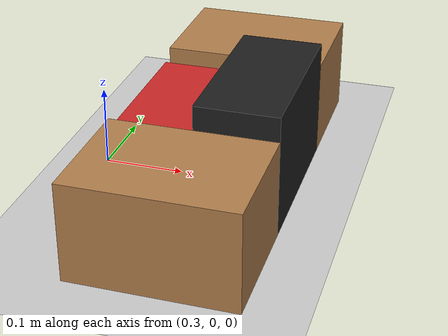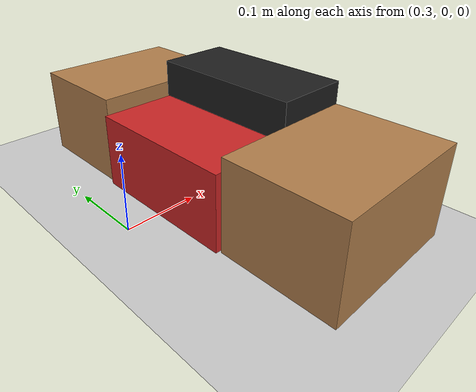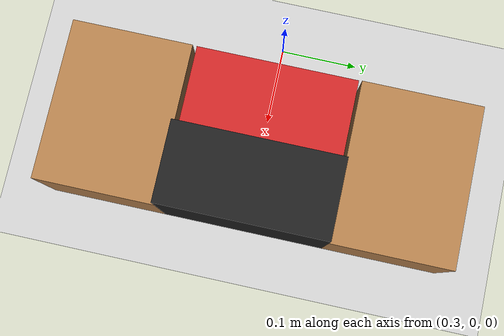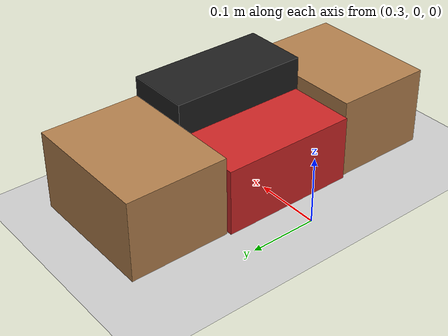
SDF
<sdf version="1.6">
 <world name="lifting">
  <physics type="ode"><real_time_update_rate>1000</real_time_update_rate></physics>
  <include><uri>model://sun</uri></include>
  <include><uri>model://ground_plane</uri></include>
  <include><uri>model://boxBack</uri></include>
  <include><uri>model://boxBellow</uri></include>
  <include><uri>model://boxLeft</uri></include>
  <include><uri>model://boxRight</uri></include>
  <plugin name="factory_pancake" filename="libfactory_pancake.so">
   <x>0.4</x>
   <y>0</y>
   <z>0.115</z>
   <pancake_radius>0.04</pancake_radius>
   <sphere_radius>0.0100</sphere_radius>
   <inertia>0.00002</inertia>
   <mass>0.03</mass>
   <mu>1</mu>
   <mu2>1</mu2>
   <c_cfm>1000</c_cfm>
   <c_erp>0</c_erp>
   <kp>1000</kp>
   <kd>1000</kd>
   <j_cfm>1</j_cfm>
   <limit_cfm>2</limit_cfm>
   <limit_erp>1</limit_erp>
  </plugin>
  <plugin name="measure_pancake_particles" filename="libmeasure_pancake_particles.so"/>
 </world>
</sdf>

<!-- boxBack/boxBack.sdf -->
<sdf version='1.6'>
  <model name="boxBack">
    <link name="boxBack">
      <pose>0.5 0 0.075 0 0 0</pose>
      <inertial>
        <mass>10000</mass>
      </inertial>
      <collision name="box_collision">
        <geometry>
          <box>
              <size>.1 .21 .15</size>
            </box>
        </geometry>
			<surface>
                <friction>
                  <ode>
                    <mu>1000</mu>
                    <mu2>1000</mu2>
                  </ode>
                </friction>
              </surface>
      </collision>
      <visual name="box_visual">
        <geometry>
          <box>
              <size>.1 .21 .15</size>
            </box>
        </geometry>
		<material>
		    <script>
		      <uri>file://media/materials/scripts/gazebo.material</uri>
		      <name>Gazebo/Black</name>
		    </script>
      	</material>
      </visual>
    </link>
  </model>
</sdf>

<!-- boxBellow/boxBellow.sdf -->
<sdf version='1.6'>
  <model name="boxBellow">
    <link name="boxBellow">
      <pose>0.4 0 0.05 0 0 0</pose>
      <inertial>
        <mass>10000</mass>
      </inertial>
      <collision name="box_collision">
        <geometry>
          <box>
              <size>.11 .205 .1</size>
          </box>
        </geometry>
      </collision>
      <visual name="box_visual">
        <geometry>
          <box>
              <size>.11 .205 .1</size>
          </box>
        </geometry>
		<material>
		    <script>
		      <uri>file://media/materials/scripts/gazebo.material</uri>
		      <name>Gazebo/Red</name>
		    </script>
      	</material>
      </visual>
    </link>
  </model>
</sdf>

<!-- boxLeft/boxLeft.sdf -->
<sdf version='1.6'>
  <model name="boxLeft">
    <link name="boxLeft">
      <pose>0.45 0.18 0.06 0 0 0</pose>
      <inertial>
        <mass>10000</mass>
      </inertial>
      <collision name="box_collision">
        <geometry>
          <box>
              <size>.2 .15 .12</size>
          </box>
        </geometry>
		<surface>
                <friction>
                  <ode>
                    <mu>1000</mu>
                    <mu2>1000</mu2>
                  </ode>
                </friction>
              </surface>
      </collision>
      <visual name="box_visual">
        <geometry>
          <box>
              <size>.2 .15 .12</size>
          </box>
        </geometry>
		<material>
                <script>
                  <uri>file://media/materials/scripts/gazebo.material</uri>
                  <name>Gazebo/Wood</name>
                </script>
              </material>
      </visual>
    </link>
  </model>
</sdf>

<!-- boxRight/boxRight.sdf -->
<sdf version='1.6'>
  <model name="boxRight">
    <link name="boxRight">
      <pose>0.45 -0.18 0.06 0 0 0</pose>
      <inertial>
        <mass>10000</mass>
      </inertial>
      <collision name="box_collision">
        <geometry>
          <box>
              <size>.2 .15 .12</size>
          </box>
        </geometry>
		<surface>
                <friction>
                  <ode>
                    <mu>1000</mu>
                    <mu2>1000</mu2>
                  </ode>
                </friction>
              </surface>
      </collision>
      <visual name="box_visual">
        <geometry>
          <box>
              <size>.2 .15 .12</size>
          </box>
        </geometry>
      <material>
		    <script>
		      <uri>file://media/materials/scripts/gazebo.material</uri>
		      <name>Gazebo/Wood</name>
		    </script>
      	</material>
      </visual>
    </link>
  </model>
</sdf>
